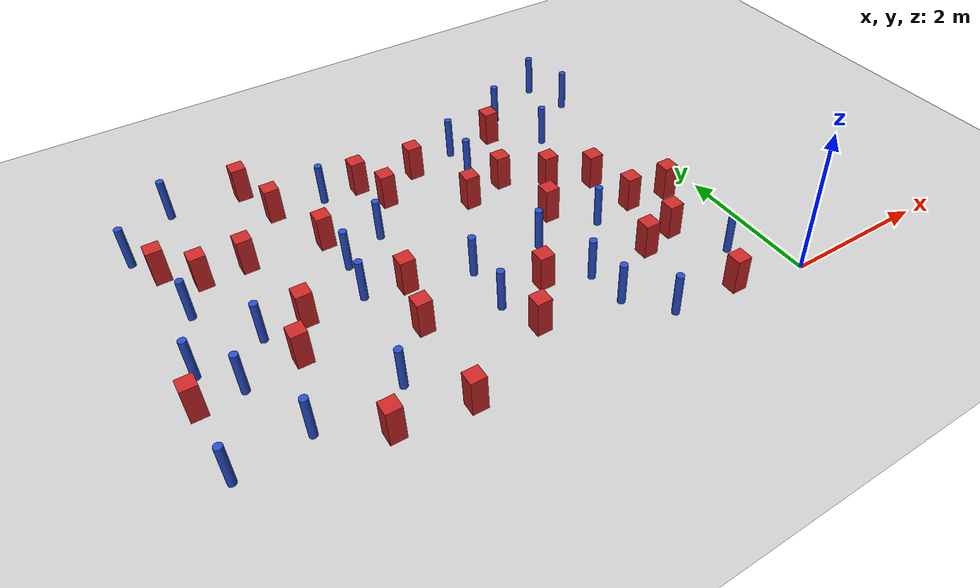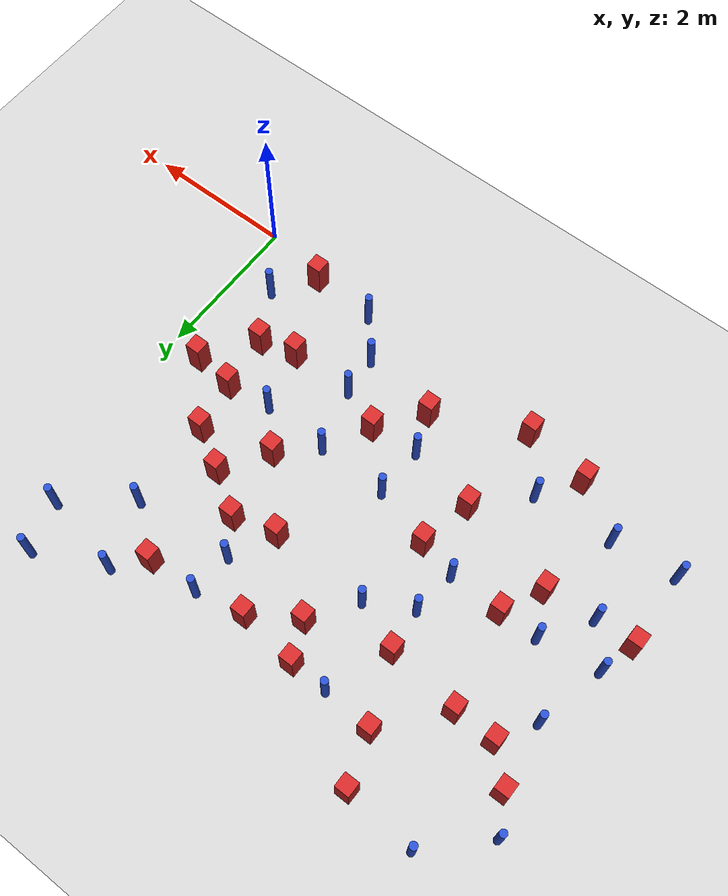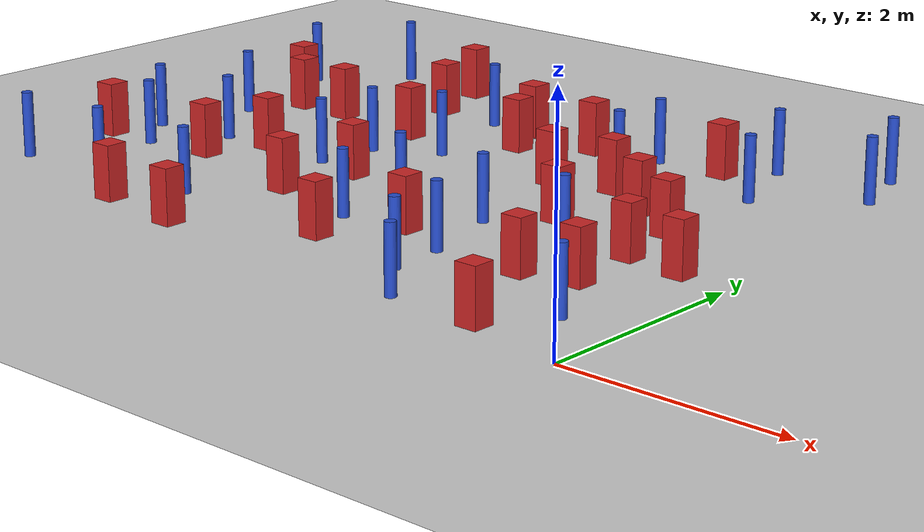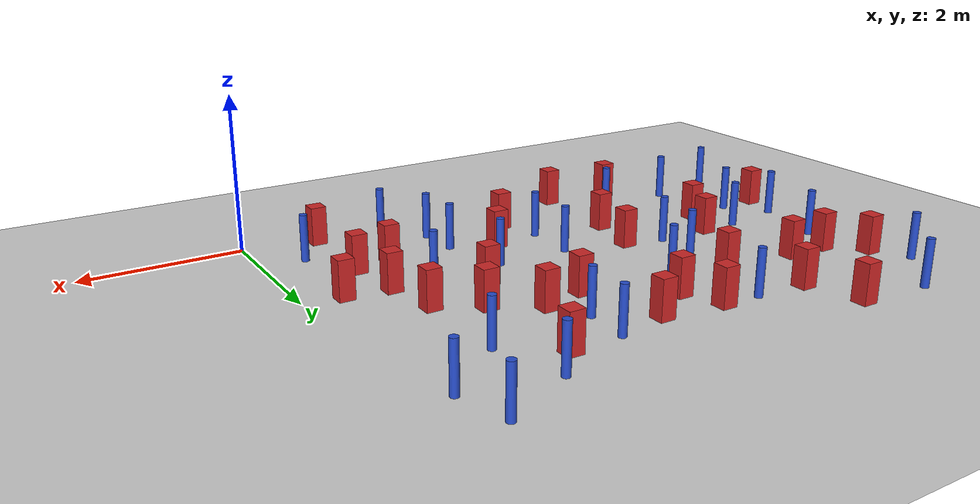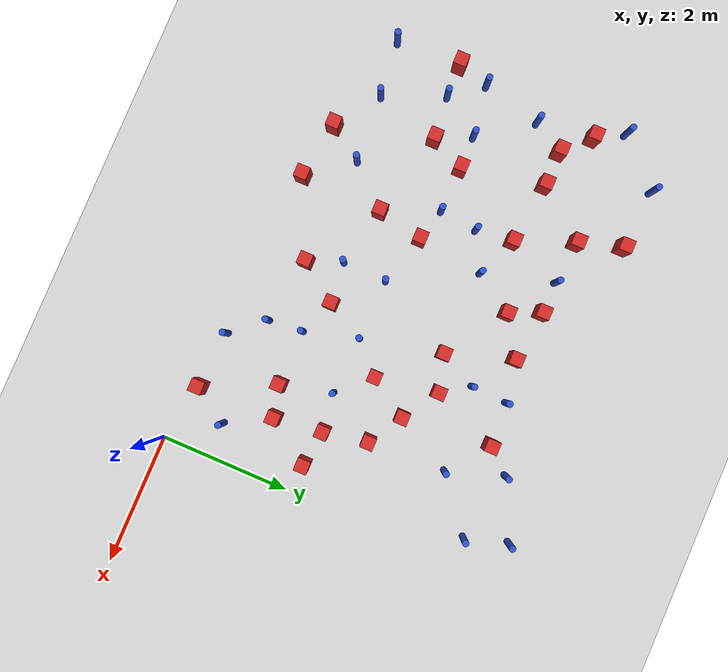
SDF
<sdf version="1.6">
 <world name="default">
  <model name="ground_plane">
   <static>1</static>
   <link name="link">
    <collision name="collision">
     <geometry><plane><normal>0 0 1</normal><size>100 100</size></plane></geometry>
     <surface><friction><ode><mu>100</mu><mu2>50</mu2></ode></friction></surface>
    </collision>
    <visual name="visual">
     <cast_shadows>0</cast_shadows>
     <geometry><plane><normal>0 0 1</normal><size>100 100</size></plane></geometry>
     <material>
      <ambient>1.0 1.0 1.0 1.0</ambient>
      <diffuse>0.8 0.8 0.8 1.0</diffuse>
      <specular>0.01 0.01 0.01 1.000000</specular>
     </material>
    </visual>
   </link>
  </model>
  <model name="square_post_obstacle2">
   <static>true</static>
   <pose>-2.08174777928 2.56492254605 1.91545236811e-07 -7.35059704564e-06 1.12565212e-07 2.39332434364e-05</pose>
   <link name="link">
    <pose>0 0 0.25 0 -0 0</pose>
    <inertial>
     <mass>100</mass>
     <inertia>
      <ixx>0.166667</ixx>
      <ixy>0</ixy>
      <ixz>0</ixz>
      <iyy>0.166667</iyy>
      <iyz>0</iyz>
      <izz>0.166667</izz>
     </inertia>
    </inertial>
    <collision name="collision"><geometry><box><size>.2 .2 .5</size></box></geometry></collision>
    <visual name="visual">
     <geometry><box><size>.2 .2 .5</size></box></geometry>
     <material>
      <script><name>Gazebo/Red</name><uri>file://media/materials/scripts/gazebo.material</uri></script>
     </material>
    </visual>
   </link>
  </model>
  <model name="square_post_obstacle10">
   <static>true</static>
   <pose>-5.75109295996 3.78641917231 1.91545236811e-07 -7.35059704564e-06 1.12565212e-07 2.39332434364e-05</pose>
   <link name="link">
    <pose>0 0 0.25 0 -0 0</pose>
    <inertial>
     <mass>100</mass>
     <inertia>
      <ixx>0.166667</ixx>
      <ixy>0</ixy>
      <ixz>0</ixz>
      <iyy>0.166667</iyy>
      <iyz>0</iyz>
      <izz>0.166667</izz>
     </inertia>
    </inertial>
    <collision name="collision"><geometry><box><size>.2 .2 .5</size></box></geometry></collision>
    <visual name="visual">
     <geometry><box><size>.2 .2 .5</size></box></geometry>
     <material>
      <script><name>Gazebo/Red</name><uri>file://media/materials/scripts/gazebo.material</uri></script>
     </material>
    </visual>
   </link>
  </model>
  <model name="square_post_obstacle13">
   <static>true</static>
   <pose>-0.931883444278 0.211325929328 1.91545236811e-07 -7.35059704564e-06 1.12565212e-07 2.39332434364e-05</pose>
   <link name="link">
    <pose>0 0 0.25 0 -0 0</pose>
    <inertial>
     <mass>100</mass>
     <inertia>
      <ixx>0.166667</ixx>
      <ixy>0</ixy>
      <ixz>0</ixz>
      <iyy>0.166667</iyy>
      <iyz>0</iyz>
      <izz>0.166667</izz>
     </inertia>
    </inertial>
    <collision name="collision"><geometry><box><size>.2 .2 .5</size></box></geometry></collision>
    <visual name="visual">
     <geometry><box><size>.2 .2 .5</size></box></geometry>
     <material>
      <script><name>Gazebo/Red</name><uri>file://media/materials/scripts/gazebo.material</uri></script>
     </material>
    </visual>
   </link>
  </model>
  <model name="pole_obstacle10">
   <static>true</static>
   <pose>-6.82636018263 2.38603952285 7.38925637345e-09 -8.47170692798e-08 1.24976764937e-08 -1.74513093023e-07</pose>
   <link name="link">
    <pose>0 0 0.3 0 -0 0</pose>
    <inertial>
     <mass>1</mass>
     <inertia><ixx>0.145833</ixx><ixy>0</ixy><ixz>0</ixz><iyy>0.145833</iyy><iyz>0</iyz><izz>0.125</izz></inertia>
    </inertial>
    <collision name="collision">
     <geometry><cylinder><radius>0.05</radius><length>.6</length></cylinder></geometry>
    </collision>
    <visual name="visual">
     <geometry><cylinder><radius>0.05</radius><length>.6</length></cylinder></geometry>
     <material>
      <script><name>Gazebo/Blue</name><uri>file://media/materials/scripts/gazebo.material</uri></script>
     </material>
    </visual>
   </link>
  </model>
  <model name="square_post_obstacle25">
   <static>true</static>
   <pose>-5.48884879963 2.51707983936 1.91545236811e-07 -7.35059704564e-06 1.12565212e-07 2.39332434364e-05</pose>
   <link name="link">
    <pose>0 0 0.25 0 -0 0</pose>
    <inertial>
     <mass>100</mass>
     <inertia>
      <ixx>0.166667</ixx>
      <ixy>0</ixy>
      <ixz>0</ixz>
      <iyy>0.166667</iyy>
      <iyz>0</iyz>
      <izz>0.166667</izz>
     </inertia>
    </inertial>
    <collision name="collision"><geometry><box><size>.2 .2 .5</size></box></geometry></collision>
    <visual name="visual">
     <geometry><box><size>.2 .2 .5</size></box></geometry>
     <material>
      <script><name>Gazebo/Red</name><uri>file://media/materials/scripts/gazebo.material</uri></script>
     </material>
    </visual>
   </link>
  </model>
  <model name="square_post_obstacle26">
   <static>true</static>
   <pose>-3.74213483056 4.00811661276 1.91545236811e-07 -7.35059704564e-06 1.12565212e-07 2.39332434364e-05</pose>
   <link name="link">
    <pose>0 0 0.25 0 -0 0</pose>
    <inertial>
     <mass>100</mass>
     <inertia>
      <ixx>0.166667</ixx>
      <ixy>0</ixy>
      <ixz>0</ixz>
      <iyy>0.166667</iyy>
      <iyz>0</iyz>
      <izz>0.166667</izz>
     </inertia>
    </inertial>
    <collision name="collision"><geometry><box><size>.2 .2 .5</size></box></geometry></collision>
    <visual name="visual">
     <geometry><box><size>.2 .2 .5</size></box></geometry>
     <material>
      <script><name>Gazebo/Red</name><uri>file://media/materials/scripts/gazebo.material</uri></script>
     </material>
    </visual>
   </link>
  </model>
  <model name="square_post_obstacle31">
   <static>true</static>
   <pose>-2.84538471524 1.53000682997 1.91545236811e-07 -7.35059704564e-06 1.12565212e-07 2.39332434364e-05</pose>
   <link name="link">
    <pose>0 0 0.25 0 -0 0</pose>
    <inertial>
     <mass>100</mass>
     <inertia>
      <ixx>0.166667</ixx>
      <ixy>0</ixy>
      <ixz>0</ixz>
      <iyy>0.166667</iyy>
      <iyz>0</iyz>
      <izz>0.166667</izz>
     </inertia>
    </inertial>
    <collision name="collision"><geometry><box><size>.2 .2 .5</size></box></geometry></collision>
    <visual name="visual">
     <geometry><box><size>.2 .2 .5</size></box></geometry>
     <material>
      <script><name>Gazebo/Red</name><uri>file://media/materials/scripts/gazebo.material</uri></script>
     </material>
    </visual>
   </link>
  </model>
  <model name="pole_obstacle25">
   <static>true</static>
   <pose>-3.46894240417 2.14531281499 7.38925637345e-09 -8.47170692798e-08 1.24976764939e-08 -1.74513093025e-07</pose>
   <link name="link">
    <pose>0 0 0.3 0 -0 0</pose>
    <inertial>
     <mass>1</mass>
     <inertia><ixx>0.145833</ixx><ixy>0</ixy><ixz>0</ixz><iyy>0.145833</iyy><iyz>0</iyz><izz>0.125</izz></inertia>
    </inertial>
    <collision name="collision">
     <geometry><cylinder><radius>0.05</radius><length>.6</length></cylinder></geometry>
    </collision>
    <visual name="visual">
     <geometry><cylinder><radius>0.05</radius><length>.6</length></cylinder></geometry>
     <material>
      <script><name>Gazebo/Blue</name><uri>file://media/materials/scripts/gazebo.material</uri></script>
     </material>
    </visual>
   </link>
  </model>
  <model name="pole_obstacle28">
   <static>true</static>
   <pose>-4.1387914778 3.4080291508 7.38925637345e-09 -8.47170692798e-08 1.24976764937e-08 -1.74513093023e-07</pose>
   <link name="link">
    <pose>0 0 0.3 0 -0 0</pose>
    <inertial>
     <mass>1</mass>
     <inertia><ixx>0.145833</ixx><ixy>0</ixy><ixz>0</ixz><iyy>0.145833</iyy><iyz>0</iyz><izz>0.125</izz></inertia>
    </inertial>
    <collision name="collision">
     <geometry><cylinder><radius>0.05</radius><length>.6</length></cylinder></geometry>
    </collision>
    <visual name="visual">
     <geometry><cylinder><radius>0.05</radius><length>.6</length></cylinder></geometry>
     <material>
      <script><name>Gazebo/Blue</name><uri>file://media/materials/scripts/gazebo.material</uri></script>
     </material>
    </visual>
   </link>
  </model>
  <model name="pole_obstacle35">
   <static>true</static>
   <pose>-1.62454958275 2.08910644873 7.38925637345e-09 -8.47170692799e-08 1.24976765053e-08 -1.74513093017e-07</pose>
   <link name="link">
    <pose>0 0 0.3 0 -0 0</pose>
    <inertial>
     <mass>1</mass>
     <inertia><ixx>0.145833</ixx><ixy>0</ixy><ixz>0</ixz><iyy>0.145833</iyy><iyz>0</iyz><izz>0.125</izz></inertia>
    </inertial>
    <collision name="collision">
     <geometry><cylinder><radius>0.05</radius><length>.6</length></cylinder></geometry>
    </collision>
    <visual name="visual">
     <geometry><cylinder><radius>0.05</radius><length>.6</length></cylinder></geometry>
     <material>
      <script><name>Gazebo/Blue</name><uri>file://media/materials/scripts/gazebo.material</uri></script>
     </material>
    </visual>
   </link>
  </model>
  <model name="square_post_obstacle44">
   <static>true</static>
   <pose>-1.03671857122 2.17078985959 1.91545236811e-07 -7.35059704564e-06 1.12565212e-07 2.39332434364e-05</pose>
   <link name="link">
    <pose>0 0 0.25 0 -0 0</pose>
    <inertial>
     <mass>100</mass>
     <inertia>
      <ixx>0.166667</ixx>
      <ixy>0</ixy>
      <ixz>0</ixz>
      <iyy>0.166667</iyy>
      <iyz>0</iyz>
      <izz>0.166667</izz>
     </inertia>
    </inertial>
    <collision name="collision"><geometry><box><size>.2 .2 .5</size></box></geometry></collision>
    <visual name="visual">
     <geometry><box><size>.2 .2 .5</size></box></geometry>
     <material>
      <script><name>Gazebo/Red</name><uri>file://media/materials/scripts/gazebo.material</uri></script>
     </material>
    </visual>
   </link>
  </model>
  <model name="square_post_obstacle48">
   <static>true</static>
   <pose>-1.16762355893 2.85308160072 1.91545236811e-07 -7.35059704564e-06 1.12565212e-07 2.39332434364e-05</pose>
   <link name="link">
    <pose>0 0 0.25 0 -0 0</pose>
    <inertial>
     <mass>100</mass>
     <inertia>
      <ixx>0.166667</ixx>
      <ixy>0</ixy>
      <ixz>0</ixz>
      <iyy>0.166667</iyy>
      <iyz>0</iyz>
      <izz>0.166667</izz>
     </inertia>
    </inertial>
    <collision name="collision"><geometry><box><size>.2 .2 .5</size></box></geometry></collision>
    <visual name="visual">
     <geometry><box><size>.2 .2 .5</size></box></geometry>
     <material>
      <script><name>Gazebo/Red</name><uri>file://media/materials/scripts/gazebo.material</uri></script>
     </material>
    </visual>
   </link>
  </model>
  <model name="pole_obstacle49">
   <static>true</static>
   <pose>-0.599213812483 5.35847935057 7.38925637345e-09 -8.471706928e-08 1.24976765086e-08 -1.74513093015e-07</pose>
   <link name="link">
    <pose>0 0 0.3 0 -0 0</pose>
    <inertial>
     <mass>1</mass>
     <inertia><ixx>0.145833</ixx><ixy>0</ixy><ixz>0</ixz><iyy>0.145833</iyy><iyz>0</iyz><izz>0.125</izz></inertia>
    </inertial>
    <collision name="collision">
     <geometry><cylinder><radius>0.05</radius><length>.6</length></cylinder></geometry>
    </collision>
    <visual name="visual">
     <geometry><cylinder><radius>0.05</radius><length>.6</length></cylinder></geometry>
     <material>
      <script><name>Gazebo/Blue</name><uri>file://media/materials/scripts/gazebo.material</uri></script>
     </material>
    </visual>
   </link>
  </model>
  <model name="square_post_obstacle50">
   <static>true</static>
   <pose>-3.14964533168 4.38775939753 1.91545236811e-07 -7.35059704564e-06 1.12565212e-07 2.39332434364e-05</pose>
   <link name="link">
    <pose>0 0 0.25 0 -0 0</pose>
    <inertial>
     <mass>100</mass>
     <inertia>
      <ixx>0.166667</ixx>
      <ixy>0</ixy>
      <ixz>0</ixz>
      <iyy>0.166667</iyy>
      <iyz>0</iyz>
      <izz>0.166667</izz>
     </inertia>
    </inertial>
    <collision name="collision"><geometry><box><size>.2 .2 .5</size></box></geometry></collision>
    <visual name="visual">
     <geometry><box><size>.2 .2 .5</size></box></geometry>
     <material>
      <script><name>Gazebo/Red</name><uri>file://media/materials/scripts/gazebo.material</uri></script>
     </material>
    </visual>
   </link>
  </model>
  <model name="square_post_obstacle51">
   <static>true</static>
   <pose>-5.12881095472 4.5572569772 1.91545236811e-07 -7.35059704564e-06 1.12565212e-07 2.39332434364e-05</pose>
   <link name="link">
    <pose>0 0 0.25 0 -0 0</pose>
    <inertial>
     <mass>100</mass>
     <inertia>
      <ixx>0.166667</ixx>
      <ixy>0</ixy>
      <ixz>0</ixz>
      <iyy>0.166667</iyy>
      <iyz>0</iyz>
      <izz>0.166667</izz>
     </inertia>
    </inertial>
    <collision name="collision"><geometry><box><size>.2 .2 .5</size></box></geometry></collision>
    <visual name="visual">
     <geometry><box><size>.2 .2 .5</size></box></geometry>
     <material>
      <script><name>Gazebo/Red</name><uri>file://media/materials/scripts/gazebo.material</uri></script>
     </material>
    </visual>
   </link>
  </model>
  <model name="square_post_obstacle60">
   <static>true</static>
   <pose>-4.41151368013 1.65691369199 1.91545236811e-07 -7.35059704564e-06 1.12565212e-07 2.39332434364e-05</pose>
   <link name="link">
    <pose>0 0 0.25 0 -0 0</pose>
    <inertial>
     <mass>100</mass>
     <inertia>
      <ixx>0.166667</ixx>
      <ixy>0</ixy>
      <ixz>0</ixz>
      <iyy>0.166667</iyy>
      <iyz>0</iyz>
      <izz>0.166667</izz>
     </inertia>
    </inertial>
    <collision name="collision"><geometry><box><size>.2 .2 .5</size></box></geometry></collision>
    <visual name="visual">
     <geometry><box><size>.2 .2 .5</size></box></geometry>
     <material>
      <script><name>Gazebo/Red</name><uri>file://media/materials/scripts/gazebo.material</uri></script>
     </material>
    </visual>
   </link>
  </model>
  <model name="pole_obstacle59">
   <static>true</static>
   <pose>-6.0186125265 2.50779884836 7.38925637345e-09 -8.47170692798e-08 1.24976764937e-08 -1.74513093023e-07</pose>
   <link name="link">
    <pose>0 0 0.3 0 -0 0</pose>
    <inertial>
     <mass>1</mass>
     <inertia><ixx>0.145833</ixx><ixy>0</ixy><ixz>0</ixz><iyy>0.145833</iyy><iyz>0</iyz><izz>0.125</izz></inertia>
    </inertial>
    <collision name="collision">
     <geometry><cylinder><radius>0.05</radius><length>.6</length></cylinder></geometry>
    </collision>
    <visual name="visual">
     <geometry><cylinder><radius>0.05</radius><length>.6</length></cylinder></geometry>
     <material>
      <script><name>Gazebo/Blue</name><uri>file://media/materials/scripts/gazebo.material</uri></script>
     </material>
    </visual>
   </link>
  </model>
  <model name="square_post_obstacle74">
   <static>true</static>
   <pose>-3.28035094929 0.931512620311 1.91545236811e-07 -7.35059704564e-06 1.12565212e-07 2.39332434364e-05</pose>
   <link name="link">
    <pose>0 0 0.25 0 -0 0</pose>
    <inertial>
     <mass>100</mass>
     <inertia>
      <ixx>0.166667</ixx>
      <ixy>0</ixy>
      <ixz>0</ixz>
      <iyy>0.166667</iyy>
      <iyz>0</iyz>
      <izz>0.166667</izz>
     </inertia>
    </inertial>
    <collision name="collision"><geometry><box><size>.2 .2 .5</size></box></geometry></collision>
    <visual name="visual">
     <geometry><box><size>.2 .2 .5</size></box></geometry>
     <material>
      <script><name>Gazebo/Red</name><uri>file://media/materials/scripts/gazebo.material</uri></script>
     </material>
    </visual>
   </link>
  </model>
  <model name="square_post_obstacle75">
   <static>true</static>
   <pose>-5.75168205189 1.98025696376 1.91545236811e-07 -7.35059704564e-06 1.12565212e-07 2.39332434364e-05</pose>
   <link name="link">
    <pose>0 0 0.25 0 -0 0</pose>
    <inertial>
     <mass>100</mass>
     <inertia>
      <ixx>0.166667</ixx>
      <ixy>0</ixy>
      <ixz>0</ixz>
      <iyy>0.166667</iyy>
      <iyz>0</iyz>
      <izz>0.166667</izz>
     </inertia>
    </inertial>
    <collision name="collision"><geometry><box><size>.2 .2 .5</size></box></geometry></collision>
    <visual name="visual">
     <geometry><box><size>.2 .2 .5</size></box></geometry>
     <material>
      <script><name>Gazebo/Red</name><uri>file://media/materials/scripts/gazebo.material</uri></script>
     </material>
    </visual>
   </link>
  </model>
  <model name="pole_obstacle77">
   <static>true</static>
   <pose>-1.4931333587 4.92958625457 7.38925637345e-09 -8.47170692799e-08 1.24976765033e-08 -1.74513093018e-07</pose>
   <link name="link">
    <pose>0 0 0.3 0 -0 0</pose>
    <inertial>
     <mass>1</mass>
     <inertia><ixx>0.145833</ixx><ixy>0</ixy><ixz>0</ixz><iyy>0.145833</iyy><iyz>0</iyz><izz>0.125</izz></inertia>
    </inertial>
    <collision name="collision">
     <geometry><cylinder><radius>0.05</radius><length>.6</length></cylinder></geometry>
    </collision>
    <visual name="visual">
     <geometry><cylinder><radius>0.05</radius><length>.6</length></cylinder></geometry>
     <material>
      <script><name>Gazebo/Blue</name><uri>file://media/materials/scripts/gazebo.material</uri></script>
     </material>
    </visual>
   </link>
  </model>
  <model name="square_post_obstacle78">
   <static>true</static>
   <pose>-0.477549662124 2.09673155662 1.91545236811e-07 -7.35059704564e-06 1.12565212e-07 2.39332434364e-05</pose>
   <link name="link">
    <pose>0 0 0.25 0 -0 0</pose>
    <inertial>
     <mass>100</mass>
     <inertia>
      <ixx>0.166667</ixx>
      <ixy>0</ixy>
      <ixz>0</ixz>
      <iyy>0.166667</iyy>
      <iyz>0</iyz>
      <izz>0.166667</izz>
     </inertia>
    </inertial>
    <collision name="collision"><geometry><box><size>.2 .2 .5</size></box></geometry></collision>
    <visual name="visual">
     <geometry><box><size>.2 .2 .5</size></box></geometry>
     <material>
      <script><name>Gazebo/Red</name><uri>file://media/materials/scripts/gazebo.material</uri></script>
     </material>
    </visual>
   </link>
  </model>
  <model name="pole_obstacle83">
   <static>true</static>
   <pose>-4.9827296916 1.03111026156 7.38925637345e-09 -8.47170692801e-08 1.24976765139e-08 -1.74513093014e-07</pose>
   <link name="link">
    <pose>0 0 0.3 0 -0 0</pose>
    <inertial>
     <mass>1</mass>
     <inertia><ixx>0.145833</ixx><ixy>0</ixy><ixz>0</ixz><iyy>0.145833</iyy><iyz>0</iyz><izz>0.125</izz></inertia>
    </inertial>
    <collision name="collision">
     <geometry><cylinder><radius>0.05</radius><length>.6</length></cylinder></geometry>
    </collision>
    <visual name="visual">
     <geometry><cylinder><radius>0.05</radius><length>.6</length></cylinder></geometry>
     <material>
      <script><name>Gazebo/Blue</name><uri>file://media/materials/scripts/gazebo.material</uri></script>
     </material>
    </visual>
   </link>
  </model>
  <model name="pole_obstacle84">
   <static>true</static>
   <pose>-6.29322440867 5.31301989472 7.38925637345e-09 -8.47170692796e-08 1.24976764786e-08 -1.74513093032e-07</pose>
   <link name="link">
    <pose>0 0 0.3 0 -0 0</pose>
    <inertial>
     <mass>1</mass>
     <inertia><ixx>0.145833</ixx><ixy>0</ixy><ixz>0</ixz><iyy>0.145833</iyy><iyz>0</iyz><izz>0.125</izz></inertia>
    </inertial>
    <collision name="collision">
     <geometry><cylinder><radius>0.05</radius><length>.6</length></cylinder></geometry>
    </collision>
    <visual name="visual">
     <geometry><cylinder><radius>0.05</radius><length>.6</length></cylinder></geometry>
     <material>
      <script><name>Gazebo/Blue</name><uri>file://media/materials/scripts/gazebo.material</uri></script>
     </material>
    </visual>
   </link>
  </model>
  <model name="pole_obstacle97">
   <static>true</static>
   <pose>-4.45635326836 4.5092699756 7.38925637345e-09 -8.47170692796e-08 1.24976764786e-08 -1.74513093032e-07</pose>
   <link name="link">
    <pose>0 0 0.3 0 -0 0</pose>
    <inertial>
     <mass>1</mass>
     <inertia><ixx>0.145833</ixx><ixy>0</ixy><ixz>0</ixz><iyy>0.145833</iyy><iyz>0</iyz><izz>0.125</izz></inertia>
    </inertial>
    <collision name="collision">
     <geometry><cylinder><radius>0.05</radius><length>.6</length></cylinder></geometry>
    </collision>
    <visual name="visual">
     <geometry><cylinder><radius>0.05</radius><length>.6</length></cylinder></geometry>
     <material>
      <script><name>Gazebo/Blue</name><uri>file://media/materials/scripts/gazebo.material</uri></script>
     </material>
    </visual>
   </link>
  </model>
  <model name="square_post_obstacle93">
   <static>true</static>
   <pose>-4.45539075539 0.374414208109 1.91545236811e-07 -7.35059704564e-06 1.12565212e-07 2.39332434364e-05</pose>
   <link name="link">
    <pose>0 0 0.25 0 -0 0</pose>
    <inertial>
     <mass>100</mass>
     <inertia>
      <ixx>0.166667</ixx>
      <ixy>0</ixy>
      <ixz>0</ixz>
      <iyy>0.166667</iyy>
      <iyz>0</iyz>
      <izz>0.166667</izz>
     </inertia>
    </inertial>
    <collision name="collision"><geometry><box><size>.2 .2 .5</size></box></geometry></collision>
    <visual name="visual">
     <geometry><box><size>.2 .2 .5</size></box></geometry>
     <material>
      <script><name>Gazebo/Red</name><uri>file://media/materials/scripts/gazebo.material</uri></script>
     </material>
    </visual>
   </link>
  </model>
  <model name="pole_obstacle106">
   <static>true</static>
   <pose>-6.91936749113 0.871591350804 7.38925637345e-09 -8.47170692799e-08 1.24976765038e-08 -1.74513093018e-07</pose>
   <link name="link">
    <pose>0 0 0.3 0 -0 0</pose>
    <inertial>
     <mass>1</mass>
     <inertia><ixx>0.145833</ixx><ixy>0</ixy><ixz>0</ixz><iyy>0.145833</iyy><iyz>0</iyz><izz>0.125</izz></inertia>
    </inertial>
    <collision name="collision">
     <geometry><cylinder><radius>0.05</radius><length>.6</length></cylinder></geometry>
    </collision>
    <visual name="visual">
     <geometry><cylinder><radius>0.05</radius><length>.6</length></cylinder></geometry>
     <material>
      <script><name>Gazebo/Blue</name><uri>file://media/materials/scripts/gazebo.material</uri></script>
     </material>
    </visual>
   </link>
  </model>
  <model name="pole_obstacle111">
   <static>true</static>
   <pose>-0.407554028103 4.70803870795 7.38925637345e-09 -8.471706928e-08 1.24976765079e-08 -1.74513093015e-07</pose>
   <link name="link">
    <pose>0 0 0.3 0 -0 0</pose>
    <inertial>
     <mass>1</mass>
     <inertia><ixx>0.145833</ixx><ixy>0</ixy><ixz>0</ixz><iyy>0.145833</iyy><iyz>0</iyz><izz>0.125</izz></inertia>
    </inertial>
    <collision name="collision">
     <geometry><cylinder><radius>0.05</radius><length>.6</length></cylinder></geometry>
    </collision>
    <visual name="visual">
     <geometry><cylinder><radius>0.05</radius><length>.6</length></cylinder></geometry>
     <material>
      <script><name>Gazebo/Blue</name><uri>file://media/materials/scripts/gazebo.material</uri></script>
     </material>
    </visual>
   </link>
  </model>
  <model name="pole_obstacle112">
   <static>true</static>
   <pose>-2.28585516873 1.29887911819 7.38925637345e-09 -8.471706928e-08 1.24976765152e-08 -1.74513093012e-07</pose>
   <link name="link">
    <pose>0 0 0.3 0 -0 0</pose>
    <inertial>
     <mass>1</mass>
     <inertia><ixx>0.145833</ixx><ixy>0</ixy><ixz>0</ixz><iyy>0.145833</iyy><iyz>0</iyz><izz>0.125</izz></inertia>
    </inertial>
    <collision name="collision">
     <geometry><cylinder><radius>0.05</radius><length>.6</length></cylinder></geometry>
    </collision>
    <visual name="visual">
     <geometry><cylinder><radius>0.05</radius><length>.6</length></cylinder></geometry>
     <material>
      <script><name>Gazebo/Blue</name><uri>file://media/materials/scripts/gazebo.material</uri></script>
     </material>
    </visual>
   </link>
  </model>
  <model name="pole_obstacle116">
   <static>true</static>
   <pose>-2.23772927288 0.760022703838 7.38925637345e-09 -8.471706928e-08 1.24976765177e-08 -1.74513093012e-07</pose>
   <link name="link">
    <pose>0 0 0.3 0 -0 0</pose>
    <inertial>
     <mass>1</mass>
     <inertia><ixx>0.145833</ixx><ixy>0</ixy><ixz>0</ixz><iyy>0.145833</iyy><iyz>0</iyz><izz>0.125</izz></inertia>
    </inertial>
    <collision name="collision">
     <geometry><cylinder><radius>0.05</radius><length>.6</length></cylinder></geometry>
    </collision>
    <visual name="visual">
     <geometry><cylinder><radius>0.05</radius><length>.6</length></cylinder></geometry>
     <material>
      <script><name>Gazebo/Blue</name><uri>file://media/materials/scripts/gazebo.material</uri></script>
     </material>
    </visual>
   </link>
  </model>
  <model name="pole_obstacle118">
   <static>true</static>
   <pose>-2.49772408466 4.52182083756 7.38925637345e-09 -8.47170692798e-08 1.24976765033e-08 -1.74513093019e-07</pose>
   <link name="link">
    <pose>0 0 0.3 0 -0 0</pose>
    <inertial>
     <mass>1</mass>
     <inertia><ixx>0.145833</ixx><ixy>0</ixy><ixz>0</ixz><iyy>0.145833</iyy><iyz>0</iyz><izz>0.125</izz></inertia>
    </inertial>
    <collision name="collision">
     <geometry><cylinder><radius>0.05</radius><length>.6</length></cylinder></geometry>
    </collision>
    <visual name="visual">
     <geometry><cylinder><radius>0.05</radius><length>.6</length></cylinder></geometry>
     <material>
      <script><name>Gazebo/Blue</name><uri>file://media/materials/scripts/gazebo.material</uri></script>
     </material>
    </visual>
   </link>
  </model>
  <model name="square_post_obstacle105">
   <static>true</static>
   <pose>-1.42963081717 1.30017403253 1.91545236811e-07 -7.35059704564e-06 1.12565212e-07 2.39332434364e-05</pose>
   <link name="link">
    <pose>0 0 0.25 0 -0 0</pose>
    <inertial>
     <mass>100</mass>
     <inertia>
      <ixx>0.166667</ixx>
      <ixy>0</ixy>
      <ixz>0</ixz>
      <iyy>0.166667</iyy>
      <iyz>0</iyz>
      <izz>0.166667</izz>
     </inertia>
    </inertial>
    <collision name="collision"><geometry><box><size>.2 .2 .5</size></box></geometry></collision>
    <visual name="visual">
     <geometry><box><size>.2 .2 .5</size></box></geometry>
     <material>
      <script><name>Gazebo/Red</name><uri>file://media/materials/scripts/gazebo.material</uri></script>
     </material>
    </visual>
   </link>
  </model>
  <model name="square_post_obstacle107">
   <static>true</static>
   <pose>-1.82703627651 4.54788431354 1.91545236811e-07 -7.35059704564e-06 1.12565212e-07 2.39332434364e-05</pose>
   <link name="link">
    <pose>0 0 0.25 0 -0 0</pose>
    <inertial>
     <mass>100</mass>
     <inertia>
      <ixx>0.166667</ixx>
      <ixy>0</ixy>
      <ixz>0</ixz>
      <iyy>0.166667</iyy>
      <iyz>0</iyz>
      <izz>0.166667</izz>
     </inertia>
    </inertial>
    <collision name="collision"><geometry><box><size>.2 .2 .5</size></box></geometry></collision>
    <visual name="visual">
     <geometry><box><size>.2 .2 .5</size></box></geometry>
     <material>
      <script><name>Gazebo/Red</name><uri>file://media/materials/scripts/gazebo.material</uri></script>
     </material>
    </visual>
   </link>
  </model>
  <model name="pole_obstacle131">
   <static>true</static>
   <pose>-6.04357552923 0.966042305922 7.38925637345e-09 -8.471706928e-08 1.24976765166e-08 -1.74513093011e-07</pose>
   <link name="link">
    <pose>0 0 0.3 0 -0 0</pose>
    <inertial>
     <mass>1</mass>
     <inertia><ixx>0.145833</ixx><ixy>0</ixy><ixz>0</ixz><iyy>0.145833</iyy><iyz>0</iyz><izz>0.125</izz></inertia>
    </inertial>
    <collision name="collision">
     <geometry><cylinder><radius>0.05</radius><length>.6</length></cylinder></geometry>
    </collision>
    <visual name="visual">
     <geometry><cylinder><radius>0.05</radius><length>.6</length></cylinder></geometry>
     <material>
      <script><name>Gazebo/Blue</name><uri>file://media/materials/scripts/gazebo.material</uri></script>
     </material>
    </visual>
   </link>
  </model>
  <model name="pole_obstacle136">
   <static>true</static>
   <pose>-0.55528735323 0.746216034369 7.38925637345e-09 -8.47170692799e-08 1.24976765008e-08 -1.7451309302e-07</pose>
   <link name="link">
    <pose>0 0 0.3 0 -0 0</pose>
    <inertial>
     <mass>1</mass>
     <inertia><ixx>0.145833</ixx><ixy>0</ixy><ixz>0</ixz><iyy>0.145833</iyy><iyz>0</iyz><izz>0.125</izz></inertia>
    </inertial>
    <collision name="collision">
     <geometry><cylinder><radius>0.05</radius><length>.6</length></cylinder></geometry>
    </collision>
    <visual name="visual">
     <geometry><cylinder><radius>0.05</radius><length>.6</length></cylinder></geometry>
     <material>
      <script><name>Gazebo/Blue</name><uri>file://media/materials/scripts/gazebo.material</uri></script>
     </material>
    </visual>
   </link>
  </model>
  <model name="pole_obstacle138">
   <static>true</static>
   <pose>-6.59954175783 3.3134067534 7.38925637345e-09 -8.47170692798e-08 1.24976764937e-08 -1.74513093023e-07</pose>
   <link name="link">
    <pose>0 0 0.3 0 -0 0</pose>
    <inertial>
     <mass>1</mass>
     <inertia><ixx>0.145833</ixx><ixy>0</ixy><ixz>0</ixz><iyy>0.145833</iyy><iyz>0</iyz><izz>0.125</izz></inertia>
    </inertial>
    <collision name="collision">
     <geometry><cylinder><radius>0.05</radius><length>.6</length></cylinder></geometry>
    </collision>
    <visual name="visual">
     <geometry><cylinder><radius>0.05</radius><length>.6</length></cylinder></geometry>
     <material>
      <script><name>Gazebo/Blue</name><uri>file://media/materials/scripts/gazebo.material</uri></script>
     </material>
    </visual>
   </link>
  </model>
  <model name="square_post_obstacle120">
   <static>true</static>
   <pose>-5.3433693814 0.506042816953 1.91545236811e-07 -7.35059704564e-06 1.12565212e-07 2.39332434364e-05</pose>
   <link name="link">
    <pose>0 0 0.25 0 -0 0</pose>
    <inertial>
     <mass>100</mass>
     <inertia>
      <ixx>0.166667</ixx>
      <ixy>0</ixy>
      <ixz>0</ixz>
      <iyy>0.166667</iyy>
      <iyz>0</iyz>
      <izz>0.166667</izz>
     </inertia>
    </inertial>
    <collision name="collision"><geometry><box><size>.2 .2 .5</size></box></geometry></collision>
    <visual name="visual">
     <geometry><box><size>.2 .2 .5</size></box></geometry>
     <material>
      <script><name>Gazebo/Red</name><uri>file://media/materials/scripts/gazebo.material</uri></script>
     </material>
    </visual>
   </link>
  </model>
  <model name="square_post_obstacle122">
   <static>true</static>
   <pose>-1.69438835013 3.16846907891 1.91545236811e-07 -7.35059704564e-06 1.12565212e-07 2.39332434364e-05</pose>
   <link name="link">
    <pose>0 0 0.25 0 -0 0</pose>
    <inertial>
     <mass>100</mass>
     <inertia>
      <ixx>0.166667</ixx>
      <ixy>0</ixy>
      <ixz>0</ixz>
      <iyy>0.166667</iyy>
      <iyz>0</iyz>
      <izz>0.166667</izz>
     </inertia>
    </inertial>
    <collision name="collision"><geometry><box><size>.2 .2 .5</size></box></geometry></collision>
    <visual name="visual">
     <geometry><box><size>.2 .2 .5</size></box></geometry>
     <material>
      <script><name>Gazebo/Red</name><uri>file://media/materials/scripts/gazebo.material</uri></script>
     </material>
    </visual>
   </link>
  </model>
  <model name="square_post_obstacle129">
   <static>true</static>
   <pose>-5.3403862201 5.23312486186 1.91545236811e-07 -7.35059704564e-06 1.12565212e-07 2.39332434364e-05</pose>
   <link name="link">
    <pose>0 0 0.25 0 -0 0</pose>
    <inertial>
     <mass>100</mass>
     <inertia>
      <ixx>0.166667</ixx>
      <ixy>0</ixy>
      <ixz>0</ixz>
      <iyy>0.166667</iyy>
      <iyz>0</iyz>
      <izz>0.166667</izz>
     </inertia>
    </inertial>
    <collision name="collision"><geometry><box><size>.2 .2 .5</size></box></geometry></collision>
    <visual name="visual">
     <geometry><box><size>.2 .2 .5</size></box></geometry>
     <material>
      <script><name>Gazebo/Red</name><uri>file://media/materials/scripts/gazebo.material</uri></script>
     </material>
    </visual>
   </link>
  </model>
  <model name="square_post_obstacle131">
   <static>true</static>
   <pose>-4.77720644593 3.6708869466 1.91545236811e-07 -7.35059704564e-06 1.12565212e-07 2.39332434364e-05</pose>
   <link name="link">
    <pose>0 0 0.25 0 -0 0</pose>
    <inertial>
     <mass>100</mass>
     <inertia>
      <ixx>0.166667</ixx>
      <ixy>0</ixy>
      <ixz>0</ixz>
      <iyy>0.166667</iyy>
      <iyz>0</iyz>
      <izz>0.166667</izz>
     </inertia>
    </inertial>
    <collision name="collision"><geometry><box><size>.2 .2 .5</size></box></geometry></collision>
    <visual name="visual">
     <geometry><box><size>.2 .2 .5</size></box></geometry>
     <material>
      <script><name>Gazebo/Red</name><uri>file://media/materials/scripts/gazebo.material</uri></script>
     </material>
    </visual>
   </link>
  </model>
  <model name="pole_obstacle147">
   <static>true</static>
   <pose>-4.71394201363 3.09516991694 7.38925637345e-09 -8.47170692798e-08 1.24976764937e-08 -1.74513093023e-07</pose>
   <link name="link">
    <pose>0 0 0.3 0 -0 0</pose>
    <inertial>
     <mass>1</mass>
     <inertia><ixx>0.145833</ixx><ixy>0</ixy><ixz>0</ixz><iyy>0.145833</iyy><iyz>0</iyz><izz>0.125</izz></inertia>
    </inertial>
    <collision name="collision">
     <geometry><cylinder><radius>0.05</radius><length>.6</length></cylinder></geometry>
    </collision>
    <visual name="visual">
     <geometry><cylinder><radius>0.05</radius><length>.6</length></cylinder></geometry>
     <material>
      <script><name>Gazebo/Blue</name><uri>file://media/materials/scripts/gazebo.material</uri></script>
     </material>
    </visual>
   </link>
  </model>
  <model name="square_post_obstacle147">
   <static>true</static>
   <pose>-6.3094905093 3.79347464548 1.91545236811e-07 -7.35059704564e-06 1.12565212e-07 2.39332434364e-05</pose>
   <link name="link">
    <pose>0 0 0.25 0 -0 0</pose>
    <inertial>
     <mass>100</mass>
     <inertia>
      <ixx>0.166667</ixx>
      <ixy>0</ixy>
      <ixz>0</ixz>
      <iyy>0.166667</iyy>
      <iyz>0</iyz>
      <izz>0.166667</izz>
     </inertia>
    </inertial>
    <collision name="collision"><geometry><box><size>.2 .2 .5</size></box></geometry></collision>
    <visual name="visual">
     <geometry><box><size>.2 .2 .5</size></box></geometry>
     <material>
      <script><name>Gazebo/Red</name><uri>file://media/materials/scripts/gazebo.material</uri></script>
     </material>
    </visual>
   </link>
  </model>
  <model name="square_post_obstacle150">
   <static>true</static>
   <pose>-2.81173293896 3.37185007333 1.91545236811e-07 -7.35059704564e-06 1.12565212e-07 2.39332434364e-05</pose>
   <link name="link">
    <pose>0 0 0.25 0 -0 0</pose>
    <inertial>
     <mass>100</mass>
     <inertia>
      <ixx>0.166667</ixx>
      <ixy>0</ixy>
      <ixz>0</ixz>
      <iyy>0.166667</iyy>
      <iyz>0</iyz>
      <izz>0.166667</izz>
     </inertia>
    </inertial>
    <collision name="collision"><geometry><box><size>.2 .2 .5</size></box></geometry></collision>
    <visual name="visual">
     <geometry><box><size>.2 .2 .5</size></box></geometry>
     <material>
      <script><name>Gazebo/Red</name><uri>file://media/materials/scripts/gazebo.material</uri></script>
     </material>
    </visual>
   </link>
  </model>
  <model name="pole_obstacle162">
   <static>true</static>
   <pose>-2.52128226653 2.12696808168 7.38925637345e-09 -8.47170692798e-08 1.24976764939e-08 -1.74513093025e-07</pose>
   <link name="link">
    <pose>0 0 0.3 0 -0 0</pose>
    <inertial>
     <mass>1</mass>
     <inertia><ixx>0.145833</ixx><ixy>0</ixy><ixz>0</ixz><iyy>0.145833</iyy><iyz>0</iyz><izz>0.125</izz></inertia>
    </inertial>
    <collision name="collision">
     <geometry><cylinder><radius>0.05</radius><length>.6</length></cylinder></geometry>
    </collision>
    <visual name="visual">
     <geometry><cylinder><radius>0.05</radius><length>.6</length></cylinder></geometry>
     <material>
      <script><name>Gazebo/Blue</name><uri>file://media/materials/scripts/gazebo.material</uri></script>
     </material>
    </visual>
   </link>
  </model>
  <model name="pole_obstacle163">
   <static>true</static>
   <pose>-6.43558499257 1.90264413629 7.38925637345e-09 -8.471706928e-08 1.24976765134e-08 -1.74513093015e-07</pose>
   <link name="link">
    <pose>0 0 0.3 0 -0 0</pose>
    <inertial>
     <mass>1</mass>
     <inertia><ixx>0.145833</ixx><ixy>0</ixy><ixz>0</ixz><iyy>0.145833</iyy><iyz>0</iyz><izz>0.125</izz></inertia>
    </inertial>
    <collision name="collision">
     <geometry><cylinder><radius>0.05</radius><length>.6</length></cylinder></geometry>
    </collision>
    <visual name="visual">
     <geometry><cylinder><radius>0.05</radius><length>.6</length></cylinder></geometry>
     <material>
      <script><name>Gazebo/Blue</name><uri>file://media/materials/scripts/gazebo.material</uri></script>
     </material>
    </visual>
   </link>
  </model>
  <model name="square_post_obstacle165">
   <static>true</static>
   <pose>-2.2446213077 3.52774513957 1.91545236811e-07 -7.35059704564e-06 1.12565212e-07 2.39332434364e-05</pose>
   <link name="link">
    <pose>0 0 0.25 0 -0 0</pose>
    <inertial>
     <mass>100</mass>
     <inertia>
      <ixx>0.166667</ixx>
      <ixy>0</ixy>
      <ixz>0</ixz>
      <iyy>0.166667</iyy>
      <iyz>0</iyz>
      <izz>0.166667</izz>
     </inertia>
    </inertial>
    <collision name="collision"><geometry><box><size>.2 .2 .5</size></box></geometry></collision>
    <visual name="visual">
     <geometry><box><size>.2 .2 .5</size></box></geometry>
     <material>
      <script><name>Gazebo/Red</name><uri>file://media/materials/scripts/gazebo.material</uri></script>
     </material>
    </visual>
   </link>
  </model>
  <model name="square_post_obstacle172">
   <static>true</static>
   <pose>-6.70956490779 4.18280253863 1.91545236811e-07 -7.35059704564e-06 1.12565212e-07 2.39332434364e-05</pose>
   <link name="link">
    <pose>0 0 0.25 0 -0 0</pose>
    <inertial>
     <mass>100</mass>
     <inertia>
      <ixx>0.166667</ixx>
      <ixy>0</ixy>
      <ixz>0</ixz>
      <iyy>0.166667</iyy>
      <iyz>0</iyz>
      <izz>0.166667</izz>
     </inertia>
    </inertial>
    <collision name="collision"><geometry><box><size>.2 .2 .5</size></box></geometry></collision>
    <visual name="visual">
     <geometry><box><size>.2 .2 .5</size></box></geometry>
     <material>
      <script><name>Gazebo/Red</name><uri>file://media/materials/scripts/gazebo.material</uri></script>
     </material>
    </visual>
   </link>
  </model>
  <model name="square_post_obstacle178">
   <static>true</static>
   <pose>-3.94882874893 4.48911663032 1.91545236811e-07 -7.35059704564e-06 1.12565212e-07 2.39332434364e-05</pose>
   <link name="link">
    <pose>0 0 0.25 0 -0 0</pose>
    <inertial>
     <mass>100</mass>
     <inertia>
      <ixx>0.166667</ixx>
      <ixy>0</ixy>
      <ixz>0</ixz>
      <iyy>0.166667</iyy>
      <iyz>0</iyz>
      <izz>0.166667</izz>
     </inertia>
    </inertial>
    <collision name="collision"><geometry><box><size>.2 .2 .5</size></box></geometry></collision>
    <visual name="visual">
     <geometry><box><size>.2 .2 .5</size></box></geometry>
     <material>
      <script><name>Gazebo/Red</name><uri>file://media/materials/scripts/gazebo.material</uri></script>
     </material>
    </visual>
   </link>
  </model>
  <model name="square_post_obstacle183">
   <static>true</static>
   <pose>-0.943889319018 1.42551811715 1.91545236811e-07 -7.35059704564e-06 1.12565212e-07 2.39332434364e-05</pose>
   <link name="link">
    <pose>0 0 0.25 0 -0 0</pose>
    <inertial>
     <mass>100</mass>
     <inertia>
      <ixx>0.166667</ixx>
      <ixy>0</ixy>
      <ixz>0</ixz>
      <iyy>0.166667</iyy>
      <iyz>0</iyz>
      <izz>0.166667</izz>
     </inertia>
    </inertial>
    <collision name="collision"><geometry><box><size>.2 .2 .5</size></box></geometry></collision>
    <visual name="visual">
     <geometry><box><size>.2 .2 .5</size></box></geometry>
     <material>
      <script><name>Gazebo/Red</name><uri>file://media/materials/scripts/gazebo.material</uri></script>
     </material>
    </visual>
   </link>
  </model>
  <model name="square_post_obstacle194">
   <static>true</static>
   <pose>-4.26152168133 2.37417500503 1.91545236811e-07 -7.35059704564e-06 1.12565212e-07 2.39332434364e-05</pose>
   <link name="link">
    <pose>0 0 0.25 0 -0 0</pose>
    <inertial>
     <mass>100</mass>
     <inertia>
      <ixx>0.166667</ixx>
      <ixy>0</ixy>
      <ixz>0</ixz>
      <iyy>0.166667</iyy>
      <iyz>0</iyz>
      <izz>0.166667</izz>
     </inertia>
    </inertial>
    <collision name="collision"><geometry><box><size>.2 .2 .5</size></box></geometry></collision>
    <visual name="visual">
     <geometry><box><size>.2 .2 .5</size></box></geometry>
     <material>
      <script><name>Gazebo/Red</name><uri>file://media/materials/scripts/gazebo.material</uri></script>
     </material>
    </visual>
   </link>
  </model>
  <model name="pole_obstacle203">
   <static>true</static>
   <pose>-1.81386509377 0.263069804566 7.38925637345e-09 -8.47170692799e-08 1.2497676507e-08 -1.74513093018e-07</pose>
   <link name="link">
    <pose>0 0 0.3 0 -0 0</pose>
    <inertial>
     <mass>1</mass>
     <inertia><ixx>0.145833</ixx><ixy>0</ixy><ixz>0</ixz><iyy>0.145833</iyy><iyz>0</iyz><izz>0.125</izz></inertia>
    </inertial>
    <collision name="collision">
     <geometry><cylinder><radius>0.05</radius><length>.6</length></cylinder></geometry>
    </collision>
    <visual name="visual">
     <geometry><cylinder><radius>0.05</radius><length>.6</length></cylinder></geometry>
     <material>
      <script><name>Gazebo/Blue</name><uri>file://media/materials/scripts/gazebo.material</uri></script>
     </material>
    </visual>
   </link>
  </model>
  <model name="pole_obstacle208">
   <static>true</static>
   <pose>-1.20438387697 4.06557724271 7.38925637345e-09 -8.47170692799e-08 1.24976765033e-08 -1.74513093018e-07</pose>
   <link name="link">
    <pose>0 0 0.3 0 -0 0</pose>
    <inertial>
     <mass>1</mass>
     <inertia><ixx>0.145833</ixx><ixy>0</ixy><ixz>0</ixz><iyy>0.145833</iyy><iyz>0</iyz><izz>0.125</izz></inertia>
    </inertial>
    <collision name="collision">
     <geometry><cylinder><radius>0.05</radius><length>.6</length></cylinder></geometry>
    </collision>
    <visual name="visual">
     <geometry><cylinder><radius>0.05</radius><length>.6</length></cylinder></geometry>
     <material>
      <script><name>Gazebo/Blue</name><uri>file://media/materials/scripts/gazebo.material</uri></script>
     </material>
    </visual>
   </link>
  </model>
  <model name="pole_obstacle209">
   <static>true</static>
   <pose>-2.52467474963 3.9561572317 7.38925637345e-09 -8.47170692796e-08 1.24976764799e-08 -1.74513093033e-07</pose>
   <link name="link">
    <pose>0 0 0.3 0 -0 0</pose>
    <inertial>
     <mass>1</mass>
     <inertia><ixx>0.145833</ixx><ixy>0</ixy><ixz>0</ixz><iyy>0.145833</iyy><iyz>0</iyz><izz>0.125</izz></inertia>
    </inertial>
    <collision name="collision">
     <geometry><cylinder><radius>0.05</radius><length>.6</length></cylinder></geometry>
    </collision>
    <visual name="visual">
     <geometry><cylinder><radius>0.05</radius><length>.6</length></cylinder></geometry>
     <material>
      <script><name>Gazebo/Blue</name><uri>file://media/materials/scripts/gazebo.material</uri></script>
     </material>
    </visual>
   </link>
  </model>
  <model name="pole_obstacle210">
   <static>true</static>
   <pose>-6.96739408586 4.62784427632 7.38925637345e-09 -8.47170692796e-08 1.24976764786e-08 -1.74513093032e-07</pose>
   <link name="link">
    <pose>0 0 0.3 0 -0 0</pose>
    <inertial>
     <mass>1</mass>
     <inertia><ixx>0.145833</ixx><ixy>0</ixy><ixz>0</ixz><iyy>0.145833</iyy><iyz>0</iyz><izz>0.125</izz></inertia>
    </inertial>
    <collision name="collision">
     <geometry><cylinder><radius>0.05</radius><length>.6</length></cylinder></geometry>
    </collision>
    <visual name="visual">
     <geometry><cylinder><radius>0.05</radius><length>.6</length></cylinder></geometry>
     <material>
      <script><name>Gazebo/Blue</name><uri>file://media/materials/scripts/gazebo.material</uri></script>
     </material>
    </visual>
   </link>
  </model>
  <model name="pole_obstacle212">
   <static>true</static>
   <pose>-4.7790124378 2.50005273022 7.38925637345e-09 -8.47170692798e-08 1.24976764937e-08 -1.74513093023e-07</pose>
   <link name="link">
    <pose>0 0 0.3 0 -0 0</pose>
    <inertial>
     <mass>1</mass>
     <inertia><ixx>0.145833</ixx><ixy>0</ixy><ixz>0</ixz><iyy>0.145833</iyy><iyz>0</iyz><izz>0.125</izz></inertia>
    </inertial>
    <collision name="collision">
     <geometry><cylinder><radius>0.05</radius><length>.6</length></cylinder></geometry>
    </collision>
    <visual name="visual">
     <geometry><cylinder><radius>0.05</radius><length>.6</length></cylinder></geometry>
     <material>
      <script><name>Gazebo/Blue</name><uri>file://media/materials/scripts/gazebo.material</uri></script>
     </material>
    </visual>
   </link>
  </model>
  <model name="square_post_obstacle201">
   <static>true</static>
   <pose>-6.95269771387 1.89473869917 1.91545236811e-07 -7.35059704564e-06 1.12565212e-07 2.39332434364e-05</pose>
   <link name="link">
    <pose>0 0 0.25 0 -0 0</pose>
    <inertial>
     <mass>100</mass>
     <inertia>
      <ixx>0.166667</ixx>
      <ixy>0</ixy>
      <ixz>0</ixz>
      <iyy>0.166667</iyy>
      <iyz>0</iyz>
      <izz>0.166667</izz>
     </inertia>
    </inertial>
    <collision name="collision"><geometry><box><size>.2 .2 .5</size></box></geometry></collision>
    <visual name="visual">
     <geometry><box><size>.2 .2 .5</size></box></geometry>
     <material>
      <script><name>Gazebo/Red</name><uri>file://media/materials/scripts/gazebo.material</uri></script>
     </material>
    </visual>
   </link>
  </model>
  <model name="pole_obstacle218">
   <static>true</static>
   <pose>-3.48385019039 1.4565048005 7.38925637345e-09 -8.471706928e-08 1.24976765152e-08 -1.74513093012e-07</pose>
   <link name="link">
    <pose>0 0 0.3 0 -0 0</pose>
    <inertial>
     <mass>1</mass>
     <inertia><ixx>0.145833</ixx><ixy>0</ixy><ixz>0</ixz><iyy>0.145833</iyy><iyz>0</iyz><izz>0.125</izz></inertia>
    </inertial>
    <collision name="collision">
     <geometry><cylinder><radius>0.05</radius><length>.6</length></cylinder></geometry>
    </collision>
    <visual name="visual">
     <geometry><cylinder><radius>0.05</radius><length>.6</length></cylinder></geometry>
     <material>
      <script><name>Gazebo/Blue</name><uri>file://media/materials/scripts/gazebo.material</uri></script>
     </material>
    </visual>
   </link>
  </model>
 </world>
</sdf>
